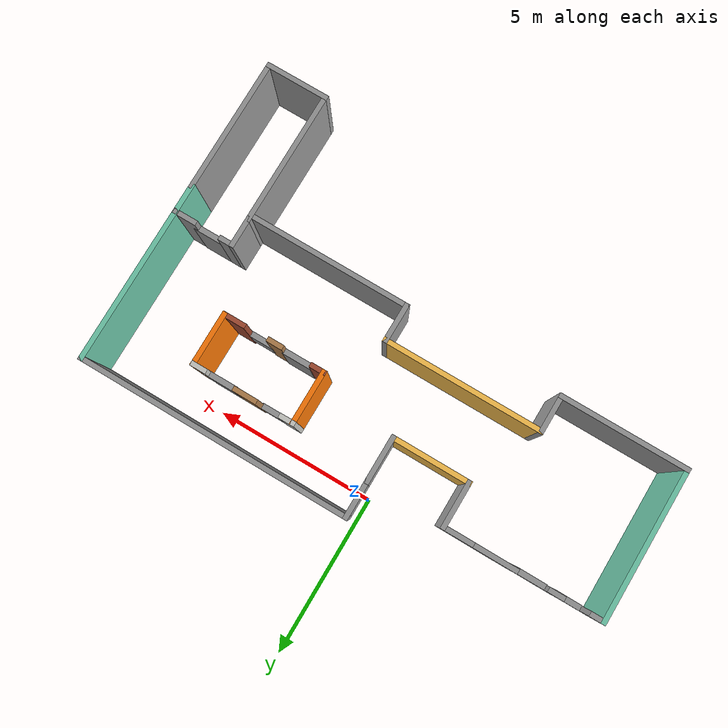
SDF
<?xml version='1.0'?>
<sdf version='1.7'>
  <model name='Building'>
    <pose>0.849011 -4.17866 0 0 -0 0</pose>
    <link name='Door_0'>
      <collision name='Door_0_Collision'>
        <geometry>
          <box>
            <size>0.9 0.17 2</size>
          </box>
        </geometry>
        <pose>0 0 1 0 -0 0</pose>
      </collision>
      <visual name='Door_0_Visual'>
        <pose>0 0 1 0 -0 0</pose>
        <geometry>
          <box>
            <size>0.9 0.17 2</size>
          </box>
        </geometry>
        <material>
          <script>
            <uri>file://media/materials/scripts/gazebo.material</uri>
            <name>Gazebo/Grey</name>
          </script>
        </material>
      </visual>
      <pose>-5.67659 3.73172 0 0 -0 0</pose>
    </link>
    <link name='Door_1'>
      <collision name='Door_1_Collision'>
        <geometry>
          <box>
            <size>0.9 0.17 2</size>
          </box>
        </geometry>
        <pose>0 0 1 0 -0 0</pose>
      </collision>
      <visual name='Door_1_Visual'>
        <pose>0 0 1 0 -0 0</pose>
        <geometry>
          <box>
            <size>0.9 0.17 2</size>
          </box>
        </geometry>
        <material>
          <script>
            <uri>file://media/materials/scripts/gazebo.material</uri>
            <name>Gazebo/Grey</name>
          </script>
        </material>
      </visual>
      <pose>2.80479 1.84268 0 0 -0 0</pose>
    </link>
    <link name='Door_2'>
      <collision name='Door_2_Collision'>
        <geometry>
          <box>
            <size>0.9 0.17 2</size>
          </box>
        </geometry>
        <pose>0 0 1 0 -0 0</pose>
      </collision>
      <visual name='Door_2_Visual'>
        <pose>0 0 1 0 -0 0</pose>
        <geometry>
          <box>
            <size>0.9 0.17 2</size>
          </box>
        </geometry>
        <material>
          <script>
            <uri>file://media/materials/scripts/gazebo.material</uri>
            <name>Gazebo/Grey</name>
          </script>
        </material>
      </visual>
      <pose>4.27081 3.44109 0 0 -0 0</pose>
    </link>
    <link name='Door_3'>
      <collision name='Door_3_Collision'>
        <geometry>
          <box>
            <size>0.9 0.17 2</size>
          </box>
        </geometry>
        <pose>0 0 1 0 -0 0</pose>
      </collision>
      <visual name='Door_3_Visual'>
        <pose>0 0 1 0 -0 0</pose>
        <geometry>
          <box>
            <size>0.9 0.17 2</size>
          </box>
        </geometry>
        <material>
          <script>
            <uri>file://media/materials/scripts/gazebo.material</uri>
            <name>Gazebo/Grey</name>
          </script>
        </material>
      </visual>
      <pose>6.77567 0.089826 0 0 -0 0</pose>
    </link>
    <link name='Wall_0'>
      <collision name='Wall_0_Collision'>
        <geometry>
          <box>
            <size>4.75 0.15 2.5</size>
          </box>
        </geometry>
        <pose>0 0 1.25 0 -0 0</pose>
      </collision>
      <visual name='Wall_0_Visual'>
        <pose>0 0 1.25 0 -0 0</pose>
        <geometry>
          <box>
            <size>4.75 0.15 2.5</size>
          </box>
        </geometry>
        <material>
          <script>
            <uri>file://media/materials/scripts/gazebo.material</uri>
            <name>Gazebo/Grey</name>
          </script>
          <ambient>0.435294 0.796078 0.67451 1</ambient>
        </material>
        <meta>
          <layer>0</layer>
        </meta>
      </visual>
      <pose>-7.76657 1.42597 0 0 -0 -1.5708</pose>
    </link>
    <link name='Wall_1'>
      <collision name='Wall_1_Collision'>
        <geometry>
          <box>
            <size>4 0.15 2.5</size>
          </box>
        </geometry>
        <pose>0 0 1.25 0 -0 0</pose>
      </collision>
      <visual name='Wall_1_Visual'>
        <pose>0 0 1.25 0 -0 0</pose>
        <geometry>
          <box>
            <size>4 0.15 2.5</size>
          </box>
        </geometry>
        <material>
          <script>
            <uri>file://media/materials/scripts/gazebo.material</uri>
            <name>Gazebo/Grey</name>
          </script>
          <ambient>1 1 1 1</ambient>
        </material>
        <meta>
          <layer>0</layer>
        </meta>
      </visual>
      <pose>-5.84157 -0.874025 0 0 -0 0</pose>
    </link>
    <link name='Wall_11'>
      <collision name='Wall_11_Collision'>
        <geometry>
          <box>
            <size>1.5 0.15 2.5</size>
          </box>
        </geometry>
        <pose>0 0 1.25 0 -0 0</pose>
      </collision>
      <visual name='Wall_11_Visual'>
        <pose>0 0 1.25 0 -0 0</pose>
        <geometry>
          <box>
            <size>1.5 0.15 2.5</size>
          </box>
        </geometry>
        <material>
          <script>
            <uri>file://media/materials/scripts/gazebo.material</uri>
            <name>Gazebo/Grey</name>
          </script>
          <ambient>1 1 1 1</ambient>
        </material>
        <meta>
          <layer>0</layer>
        </meta>
      </visual>
      <pose>-4.45843 3.75 0 0 -0 0</pose>
    </link>
    <link name='Wall_12'>
      <collision name='Wall_12_Collision'>
        <geometry>
          <box>
            <size>1 0.15 2.5</size>
          </box>
        </geometry>
        <pose>0 0 1.25 0 -0 0</pose>
      </collision>
      <visual name='Wall_12_Visual'>
        <pose>0 0 1.25 0 -0 0</pose>
        <geometry>
          <box>
            <size>1 0.15 2.5</size>
          </box>
        </geometry>
        <material>
          <script>
            <uri>file://media/materials/scripts/gazebo.material</uri>
            <name>Gazebo/Grey</name>
          </script>
          <ambient>1 1 1 1</ambient>
        </material>
        <meta>
          <layer>0</layer>
        </meta>
      </visual>
      <pose>-3.35843 3.75 0 0 -0 0</pose>
    </link>
    <link name='Wall_13'>
      <collision name='Wall_13_Collision'>
        <geometry>
          <box>
            <size>1.5 0.15 2.5</size>
          </box>
        </geometry>
        <pose>0 0 1.25 0 -0 0</pose>
      </collision>
      <visual name='Wall_13_Visual'>
        <pose>0 0 1.25 0 -0 0</pose>
        <geometry>
          <box>
            <size>1.5 0.15 2.5</size>
          </box>
        </geometry>
        <material>
          <script>
            <uri>file://media/materials/scripts/gazebo.material</uri>
            <name>Gazebo/Grey</name>
          </script>
          <ambient>1 1 1 1</ambient>
        </material>
        <meta>
          <layer>0</layer>
        </meta>
      </visual>
      <pose>-2.93343 3.075 0 0 -0 -1.5708</pose>
    </link>
    <link name='Wall_14'>
      <collision name='Wall_14_Collision'>
        <geometry>
          <box>
            <size>2.5 0.15 2.5</size>
          </box>
        </geometry>
        <pose>0 0 1.25 0 -0 0</pose>
      </collision>
      <visual name='Wall_14_Visual'>
        <pose>0 0 1.25 0 -0 0</pose>
        <geometry>
          <box>
            <size>2.5 0.15 2.5</size>
          </box>
        </geometry>
        <material>
          <script>
            <uri>file://media/materials/scripts/gazebo.material</uri>
            <name>Gazebo/Grey</name>
          </script>
          <ambient>1 0.764706 0.305882 1</ambient>
        </material>
        <meta>
          <layer>0</layer>
        </meta>
      </visual>
      <pose>-1.75843 2.4 0 0 -0 0</pose>
    </link>
    <link name='Wall_15'>
      <collision name='Wall_15_Collision'>
        <geometry>
          <box>
            <size>1.5 0.15 2.5</size>
          </box>
        </geometry>
        <pose>0 0 1.25 0 -0 0</pose>
      </collision>
      <visual name='Wall_15_Visual'>
        <pose>0 0 1.25 0 -0 0</pose>
        <geometry>
          <box>
            <size>1.5 0.15 2.5</size>
          </box>
        </geometry>
        <material>
          <script>
            <uri>file://media/materials/scripts/gazebo.material</uri>
            <name>Gazebo/Grey</name>
          </script>
          <ambient>1 1 1 1</ambient>
        </material>
        <meta>
          <layer>0</layer>
        </meta>
      </visual>
      <pose>-0.583428 3.075 0 0 -0 1.5708</pose>
    </link>
    <link name='Wall_16'>
      <collision name='Wall_16_Collision'>
        <geometry>
          <box>
            <size>1.25 0.15 2.5</size>
          </box>
        </geometry>
        <pose>0 0 1.25 0 -0 0</pose>
      </collision>
      <visual name='Wall_16_Visual'>
        <pose>0 0 1.25 0 -0 0</pose>
        <geometry>
          <box>
            <size>1.25 0.15 2.5</size>
          </box>
        </geometry>
        <material>
          <script>
            <uri>file://media/materials/scripts/gazebo.material</uri>
            <name>Gazebo/Grey</name>
          </script>
          <ambient>1 1 1 1</ambient>
        </material>
        <meta>
          <layer>0</layer>
        </meta>
      </visual>
      <pose>-0.583428 4.3 0 0 -0 1.5708</pose>
    </link>
    <link name='Wall_17'>
      <collision name='Wall_17_Collision'>
        <geometry>
          <box>
            <size>8.5 0.15 2.5</size>
          </box>
        </geometry>
        <pose>0 0 1.25 0 -0 0</pose>
      </collision>
      <visual name='Wall_17_Visual'>
        <pose>0 0 1.25 0 -0 0</pose>
        <geometry>
          <box>
            <size>8.5 0.15 2.5</size>
          </box>
        </geometry>
        <material>
          <script>
            <uri>file://media/materials/scripts/gazebo.material</uri>
            <name>Gazebo/Grey</name>
          </script>
          <ambient>1 1 1 1</ambient>
        </material>
        <meta>
          <layer>0</layer>
        </meta>
      </visual>
      <pose>3.59157 4.85 0 0 -0 0</pose>
    </link>
    <link name='Wall_18'>
      <collision name='Wall_18_Collision'>
        <geometry>
          <box>
            <size>5.75 0.15 2.5</size>
          </box>
        </geometry>
        <pose>0 0 1.25 0 -0 0</pose>
      </collision>
      <visual name='Wall_18_Visual'>
        <pose>0 0 1.25 0 -0 0</pose>
        <geometry>
          <box>
            <size>5.75 0.15 2.5</size>
          </box>
        </geometry>
        <material>
          <script>
            <uri>file://media/materials/scripts/gazebo.material</uri>
            <name>Gazebo/Grey</name>
          </script>
          <ambient>0.435294 0.796078 0.67451 1</ambient>
        </material>
        <meta>
          <layer>0</layer>
        </meta>
      </visual>
      <pose>7.76657 2.05 0 0 -0 -1.5708</pose>
    </link>
    <link name='Wall_19'>
      <collision name='Wall_19_Collision'>
        <geometry>
          <box>
            <size>4.25 0.15 2.5</size>
          </box>
        </geometry>
        <pose>0 0 1.25 0 -0 0</pose>
      </collision>
      <visual name='Wall_19_Visual'>
        <pose>0 0 1.25 0 -0 0</pose>
        <geometry>
          <box>
            <size>4.25 0.15 2.5</size>
          </box>
        </geometry>
        <material>
          <script>
            <uri>file://media/materials/scripts/gazebo.material</uri>
            <name>Gazebo/Grey</name>
          </script>
          <ambient>1 1 1 1</ambient>
        </material>
        <meta>
          <layer>0</layer>
        </meta>
      </visual>
      <pose>7.76657 -2.8 0 0 -0 -1.5708</pose>
    </link>
    <link name='Wall_2'>
      <collision name='Wall_2_Collision'>
        <geometry>
          <box>
            <size>1.25 0.15 2.5</size>
          </box>
        </geometry>
        <pose>0 0 1.25 0 -0 0</pose>
      </collision>
      <visual name='Wall_2_Visual'>
        <pose>0 0 1.25 0 -0 0</pose>
        <geometry>
          <box>
            <size>1.25 0.15 2.5</size>
          </box>
        </geometry>
        <material>
          <script>
            <uri>file://media/materials/scripts/gazebo.material</uri>
            <name>Gazebo/Grey</name>
          </script>
          <ambient>1 1 1 1</ambient>
        </material>
        <meta>
          <layer>0</layer>
        </meta>
      </visual>
      <pose>-3.91657 -0.324024 0 0 -0 1.5708</pose>
    </link>
    <link name='Wall_20'>
      <collision name='Wall_20_Collision'>
        <geometry>
          <box>
            <size>2 0.15 2.5</size>
          </box>
        </geometry>
        <pose>0 0 1.25 0 -0 0</pose>
      </collision>
      <visual name='Wall_20_Visual'>
        <pose>0 0 1.25 0 -0 0</pose>
        <geometry>
          <box>
            <size>2 0.15 2.5</size>
          </box>
        </geometry>
        <material>
          <script>
            <uri>file://media/materials/scripts/gazebo.material</uri>
            <name>Gazebo/Grey</name>
          </script>
          <ambient>1 1 1 1</ambient>
        </material>
        <meta>
          <layer>0</layer>
        </meta>
      </visual>
      <pose>6.84157 -4.85 0 0 -0 3.14159</pose>
    </link>
    <link name='Wall_21'>
      <collision name='Wall_21_Collision'>
        <geometry>
          <box>
            <size>4.25 0.15 2.5</size>
          </box>
        </geometry>
        <pose>0 0 1.25 0 -0 0</pose>
      </collision>
      <visual name='Wall_21_Visual'>
        <pose>0 0 1.25 0 -0 0</pose>
        <geometry>
          <box>
            <size>4.25 0.15 2.5</size>
          </box>
        </geometry>
        <material>
          <script>
            <uri>file://media/materials/scripts/gazebo.material</uri>
            <name>Gazebo/Grey</name>
          </script>
          <ambient>1 1 1 1</ambient>
        </material>
        <meta>
          <layer>0</layer>
        </meta>
      </visual>
      <pose>5.91657 -2.8 0 0 -0 1.5708</pose>
    </link>
    <link name='Wall_23'>
      <collision name='Wall_23_Collision'>
        <geometry>
          <box>
            <size>0.5 0.15 2.5</size>
          </box>
        </geometry>
        <pose>0 0 1.25 0 -0 0</pose>
      </collision>
      <visual name='Wall_23_Visual'>
        <pose>0 0 1.25 0 -0 0</pose>
        <geometry>
          <box>
            <size>0.5 0.15 2.5</size>
          </box>
        </geometry>
        <material>
          <script>
            <uri>file://media/materials/scripts/gazebo.material</uri>
            <name>Gazebo/Wood</name>
          </script>
          <ambient>1 1 1 1</ambient>
        </material>
        <meta>
          <layer>0</layer>
        </meta>
      </visual>
      <pose>3.46611 1.83381 0 0 -0 0</pose>
    </link>
    <link name='Wall_25'>
      <collision name='Wall_25_Collision'>
        <geometry>
          <box>
            <size>0.75 0.15 2.5</size>
          </box>
        </geometry>
        <pose>0 0 1.25 0 -0 0</pose>
      </collision>
      <visual name='Wall_25_Visual'>
        <pose>0 0 1.25 0 -0 0</pose>
        <geometry>
          <box>
            <size>0.75 0.15 2.5</size>
          </box>
        </geometry>
        <material>
          <script>
            <uri>file://media/materials/scripts/gazebo.material</uri>
            <name>Gazebo/Wood</name>
          </script>
          <ambient>1 1 1 1</ambient>
        </material>
        <meta>
          <layer>0</layer>
        </meta>
      </visual>
      <pose>3.42586 3.45216 0 0 -0 0</pose>
    </link>
    <link name='Wall_27'>
      <collision name='Wall_27_Collision'>
        <geometry>
          <box>
            <size>0.5 0.15 2.5</size>
          </box>
        </geometry>
        <pose>0 0 1.25 0 -0 0</pose>
      </collision>
      <visual name='Wall_27_Visual'>
        <pose>0 0 1.25 0 -0 0</pose>
        <geometry>
          <box>
            <size>0.5 0.15 2.5</size>
          </box>
        </geometry>
        <material>
          <script>
            <uri>file://media/materials/scripts/gazebo.material</uri>
            <name>Gazebo/CeilingTiled</name>
          </script>
          <ambient>1 1 1 1</ambient>
        </material>
        <meta>
          <layer>0</layer>
        </meta>
      </visual>
      <pose>2.10086 3.44216 0 0 -0 3.14159</pose>
    </link>
    <link name='Wall_28'>
      <collision name='Wall_28_Collision'>
        <geometry>
          <box>
            <size>1.75 0.15 2.5</size>
          </box>
        </geometry>
        <pose>0 0 1.25 0 -0 0</pose>
      </collision>
      <visual name='Wall_28_Visual'>
        <pose>0 0 1.25 0 -0 0</pose>
        <geometry>
          <box>
            <size>1.75 0.15 2.5</size>
          </box>
        </geometry>
        <material>
          <script>
            <uri>file://media/materials/scripts/gazebo.material</uri>
            <name>Gazebo/Grey</name>
          </script>
          <ambient>0.996078 0.47451 0.0196078 1</ambient>
        </material>
        <meta>
          <layer>0</layer>
        </meta>
      </visual>
      <pose>1.92586 2.64216 0 0 -0 -1.5708</pose>
    </link>
    <link name='Wall_29'>
      <collision name='Wall_29_Collision'>
        <geometry>
          <box>
            <size>0.5 0.15 2.5</size>
          </box>
        </geometry>
        <pose>0 0 1.25 0 -0 0</pose>
      </collision>
      <visual name='Wall_29_Visual'>
        <pose>0 0 1.25 0 -0 0</pose>
        <geometry>
          <box>
            <size>0.5 0.15 2.5</size>
          </box>
        </geometry>
        <material>
          <script>
            <uri>file://media/materials/scripts/gazebo.material</uri>
            <name>Gazebo/Bricks</name>
          </script>
          <ambient>1 1 1 1</ambient>
        </material>
        <meta>
          <layer>0</layer>
        </meta>
      </visual>
      <pose>2.10086 1.84216 0 0 -0 0</pose>
    </link>
    <link name='Wall_3'>
      <collision name='Wall_3_Collision'>
        <geometry>
          <box>
            <size>5 0.15 2.5</size>
          </box>
        </geometry>
        <pose>0 0 1.25 0 -0 0</pose>
      </collision>
      <visual name='Wall_3_Visual'>
        <pose>0 0 1.25 0 -0 0</pose>
        <geometry>
          <box>
            <size>5 0.15 2.5</size>
          </box>
        </geometry>
        <material>
          <script>
            <uri>file://media/materials/scripts/gazebo.material</uri>
            <name>Gazebo/Grey</name>
          </script>
          <ambient>1 0.764706 0.305882 1</ambient>
        </material>
        <meta>
          <layer>0</layer>
        </meta>
      </visual>
      <pose>-1.49157 0.225975 0 0 -0 0</pose>
    </link>
    <link name='Wall_31'>
      <collision name='Wall_31_Collision'>
        <geometry>
          <box>
            <size>0.5 0.15 2.5</size>
          </box>
        </geometry>
        <pose>0 0 1.25 0 -0 0</pose>
      </collision>
      <visual name='Wall_31_Visual'>
        <pose>0 0 1.25 0 -0 0</pose>
        <geometry>
          <box>
            <size>0.5 0.15 2.5</size>
          </box>
        </geometry>
        <material>
          <script>
            <uri>file://media/materials/scripts/gazebo.material</uri>
            <name>Gazebo/CeilingTiled</name>
          </script>
          <ambient>1 1 1 1</ambient>
        </material>
        <meta>
          <layer>0</layer>
        </meta>
      </visual>
      <pose>4.90086 3.44216 0 0 -0 0</pose>
    </link>
    <link name='Wall_32'>
      <collision name='Wall_32_Collision'>
        <geometry>
          <box>
            <size>1.73 0.15 2.5</size>
          </box>
        </geometry>
        <pose>0 0 1.25 0 -0 0</pose>
      </collision>
      <visual name='Wall_32_Visual'>
        <pose>0 0 1.25 0 -0 0</pose>
        <geometry>
          <box>
            <size>1.73 0.15 2.5</size>
          </box>
        </geometry>
        <material>
          <script>
            <uri>file://media/materials/scripts/gazebo.material</uri>
            <name>Gazebo/Grey</name>
          </script>
          <ambient>0.996078 0.47451 0.0196078 1</ambient>
        </material>
        <meta>
          <layer>0</layer>
        </meta>
      </visual>
      <pose>5.07586 2.65216 0 0 -0 -1.5708</pose>
    </link>
    <link name='Wall_33'>
      <collision name='Wall_33_Collision'>
        <geometry>
          <box>
            <size>0.75 0.15 2.5</size>
          </box>
        </geometry>
        <pose>0 0 1.25 0 -0 0</pose>
      </collision>
      <visual name='Wall_33_Visual'>
        <pose>0 0 1.25 0 -0 0</pose>
        <geometry>
          <box>
            <size>0.75 0.15 2.5</size>
          </box>
        </geometry>
        <material>
          <script>
            <uri>file://media/materials/scripts/gazebo.material</uri>
            <name>Gazebo/Bricks</name>
          </script>
          <ambient>1 1 1 1</ambient>
        </material>
        <meta>
          <layer>0</layer>
        </meta>
      </visual>
      <pose>4.77586 1.85216 0 0 -0 3.14159</pose>
    </link>
    <link name='Wall_35'>
      <collision name='Wall_35_Collision'>
        <geometry>
          <box>
            <size>1 0.15 2.5</size>
          </box>
        </geometry>
        <pose>0 0 1.25 0 -0 0</pose>
      </collision>
      <visual name='Wall_35_Visual'>
        <pose>0 0 1.25 0 -0 0</pose>
        <geometry>
          <box>
            <size>1 0.15 2.5</size>
          </box>
        </geometry>
        <material>
          <script>
            <uri>file://media/materials/scripts/gazebo.material</uri>
            <name>Gazebo/Grey</name>
          </script>
          <ambient>1 1 1 1</ambient>
        </material>
        <meta>
          <layer>0</layer>
        </meta>
      </visual>
      <pose>5.91657 -0.325 0 0 -0 1.5708</pose>
    </link>
    <link name='Wall_36'>
      <collision name='Wall_36_Collision'>
        <geometry>
          <box>
            <size>0.5 0.15 2.5</size>
          </box>
        </geometry>
        <pose>0 0 1.25 0 -0 0</pose>
      </collision>
      <visual name='Wall_36_Visual'>
        <pose>0 0 1.25 0 -0 0</pose>
        <geometry>
          <box>
            <size>0.5 0.15 2.5</size>
          </box>
        </geometry>
        <material>
          <script>
            <uri>file://media/materials/scripts/gazebo.material</uri>
            <name>Gazebo/Grey</name>
          </script>
          <ambient>1 1 1 1</ambient>
        </material>
        <meta>
          <layer>0</layer>
        </meta>
      </visual>
      <pose>6.09157 0.1 0 0 -0 0</pose>
    </link>
    <link name='Wall_38'>
      <collision name='Wall_38_Collision'>
        <geometry>
          <box>
            <size>0.75 0.15 2.5</size>
          </box>
        </geometry>
        <pose>0 0 1.25 0 -0 0</pose>
      </collision>
      <visual name='Wall_38_Visual'>
        <pose>0 0 1.25 0 -0 0</pose>
        <geometry>
          <box>
            <size>0.75 0.15 2.5</size>
          </box>
        </geometry>
        <material>
          <script>
            <uri>file://media/materials/scripts/gazebo.material</uri>
            <name>Gazebo/Grey</name>
          </script>
          <ambient>1 1 1 1</ambient>
        </material>
        <meta>
          <layer>0</layer>
        </meta>
      </visual>
      <pose>7.45865 0.087042 0 0 -0 0</pose>
    </link>
    <link name='Wall_39'>
      <collision name='Wall_39_Collision'>
        <geometry>
          <box>
            <size>0.15 0.15 2.5</size>
          </box>
        </geometry>
        <pose>0 0 1.25 0 -0 0</pose>
      </collision>
      <visual name='Wall_39_Visual'>
        <pose>0 0 1.25 0 -0 0</pose>
        <geometry>
          <box>
            <size>0.15 0.15 2.5</size>
          </box>
        </geometry>
        <material>
          <script>
            <uri>file://media/materials/scripts/gazebo.material</uri>
            <name>Gazebo/Grey</name>
          </script>
          <ambient>1 1 1 1</ambient>
        </material>
        <meta>
          <layer>0</layer>
        </meta>
      </visual>
      <pose>7.74995 0.087042 0 0 -0 0</pose>
    </link>
    <link name='Wall_4'>
      <collision name='Wall_4_Collision'>
        <geometry>
          <box>
            <size>1.25 0.15 2.5</size>
          </box>
        </geometry>
        <pose>0 0 1.25 0 -0 0</pose>
      </collision>
      <visual name='Wall_4_Visual'>
        <pose>0 0 1.25 0 -0 0</pose>
        <geometry>
          <box>
            <size>1.25 0.15 2.5</size>
          </box>
        </geometry>
        <material>
          <script>
            <uri>file://media/materials/scripts/gazebo.material</uri>
            <name>Gazebo/Grey</name>
          </script>
          <ambient>1 1 1 1</ambient>
        </material>
        <meta>
          <layer>0</layer>
        </meta>
      </visual>
      <pose>0.933427 -0.324024 0 0 -0 -1.5708</pose>
    </link>
    <link name='Wall_40'>
      <collision name='Wall_40_Collision'>
        <geometry>
          <box>
            <size>0.15 0.15 2.5</size>
          </box>
        </geometry>
        <pose>0 0 1.25 0 -0 0</pose>
      </collision>
      <visual name='Wall_40_Visual'>
        <pose>0 0 1.25 0 -0 0</pose>
        <geometry>
          <box>
            <size>0.15 0.15 2.5</size>
          </box>
        </geometry>
        <material>
          <script>
            <uri>file://media/materials/scripts/gazebo.material</uri>
            <name>Gazebo/Grey</name>
          </script>
          <ambient>1 1 1 1</ambient>
        </material>
        <meta>
          <layer>0</layer>
        </meta>
      </visual>
      <pose>7.74995 0.087042 0 0 -0 0</pose>
    </link>
    <link name='Wall_41'>
      <collision name='Wall_41_Collision'>
        <geometry>
          <box>
            <size>0.15 0.15 2.5</size>
          </box>
        </geometry>
        <pose>0 0 1.25 0 -0 0</pose>
      </collision>
      <visual name='Wall_41_Visual'>
        <pose>0 0 1.25 0 -0 0</pose>
        <geometry>
          <box>
            <size>0.15 0.15 2.5</size>
          </box>
        </geometry>
        <material>
          <script>
            <uri>file://media/materials/scripts/gazebo.material</uri>
            <name>Gazebo/Grey</name>
          </script>
          <ambient>1 1 1 1</ambient>
        </material>
        <meta>
          <layer>0</layer>
        </meta>
      </visual>
      <pose>7.74995 0.087042 0 0 -0 0</pose>
    </link>
    <link name='Wall_5'>
      <collision name='Wall_5_Collision'>
        <geometry>
          <box>
            <size>5 0.15 2.5</size>
          </box>
        </geometry>
        <pose>0 0 1.25 0 -0 0</pose>
      </collision>
      <visual name='Wall_5_Visual'>
        <pose>0 0 1.25 0 -0 0</pose>
        <geometry>
          <box>
            <size>5 0.15 2.5</size>
          </box>
        </geometry>
        <material>
          <script>
            <uri>file://media/materials/scripts/gazebo.material</uri>
            <name>Gazebo/Grey</name>
          </script>
          <ambient>1 1 1 1</ambient>
        </material>
        <meta>
          <layer>0</layer>
        </meta>
      </visual>
      <pose>3.35843 -0.874025 0 0 -0 0</pose>
    </link>
    <link name='Wall_7'>
      <collision name='Wall_7_Collision'>
        <geometry>
          <box>
            <size>0.5 0.15 2.5</size>
          </box>
        </geometry>
        <pose>0 0 1.25 0 -0 0</pose>
      </collision>
      <visual name='Wall_7_Visual'>
        <pose>0 0 1.25 0 -0 0</pose>
        <geometry>
          <box>
            <size>0.5 0.15 2.5</size>
          </box>
        </geometry>
        <material>
          <script>
            <uri>file://media/materials/scripts/gazebo.material</uri>
            <name>Gazebo/Grey</name>
          </script>
          <ambient>1 1 1 1</ambient>
        </material>
        <meta>
          <layer>0</layer>
        </meta>
      </visual>
      <pose>-7.59157 3.72598 0 0 -0 0</pose>
    </link>
    <link name='Wall_9'>
      <collision name='Wall_9_Collision'>
        <geometry>
          <box>
            <size>0.5 0.15 2.5</size>
          </box>
        </geometry>
        <pose>0 0 1.25 0 -0 0</pose>
      </collision>
      <visual name='Wall_9_Visual'>
        <pose>0 0 1.25 0 -0 0</pose>
        <geometry>
          <box>
            <size>0.5 0.15 2.5</size>
          </box>
        </geometry>
        <material>
          <script>
            <uri>file://media/materials/scripts/gazebo.material</uri>
            <name>Gazebo/Grey</name>
          </script>
          <ambient>1 1 1 1</ambient>
        </material>
        <meta>
          <layer>0</layer>
        </meta>
      </visual>
      <pose>-6.35633 3.7397 0 0 -0 0</pose>
    </link>
    <link name='Window_0'>
      <collision name='Window_0_Collision'>
        <geometry>
          <box>
            <size>0.8 0.17 0.8</size>
          </box>
        </geometry>
        <pose>0 0 0.4 0 -0 0</pose>
      </collision>
      <visual name='Window_0_Visual'>
        <pose>0 0 0.4 0 -0 0</pose>
        <geometry>
          <box>
            <size>0.8 0.17 0.8</size>
          </box>
        </geometry>
        <material>
          <script>
            <uri>file://media/materials/scripts/gazebo.material</uri>
            <name>Gazebo/Grey</name>
          </script>
        </material>
      </visual>
      <pose>-6.94222 3.72169 0.5 0 -0 0</pose>
    </link>
    <link name='Window_1'>
      <collision name='Window_1_Collision'>
        <geometry>
          <box>
            <size>0.8 0.17 0.8</size>
          </box>
        </geometry>
        <pose>0 0 0.4 0 -0 0</pose>
      </collision>
      <visual name='Window_1_Visual'>
        <pose>0 0 0.4 0 -0 0</pose>
        <geometry>
          <box>
            <size>0.8 0.17 0.8</size>
          </box>
        </geometry>
        <material>
          <script>
            <uri>file://media/materials/scripts/gazebo.material</uri>
            <name>Gazebo/Grey</name>
          </script>
        </material>
      </visual>
      <pose>4.06227 1.84065 0.5 0 -0 0</pose>
    </link>
    <link name='Window_2'>
      <collision name='Window_2_Collision'>
        <geometry>
          <box>
            <size>0.8 0.17 0.8</size>
          </box>
        </geometry>
        <pose>0 0 0.4 0 -0 0</pose>
      </collision>
      <visual name='Window_2_Visual'>
        <pose>0 0 0.4 0 -0 0</pose>
        <geometry>
          <box>
            <size>0.8 0.17 0.8</size>
          </box>
        </geometry>
        <material>
          <script>
            <uri>file://media/materials/scripts/gazebo.material</uri>
            <name>Gazebo/Grey</name>
          </script>
        </material>
      </visual>
      <pose>2.6882 3.43109 0.5 0 -0 0</pose>
    </link>
    <static>1</static>
  </model>
</sdf>
